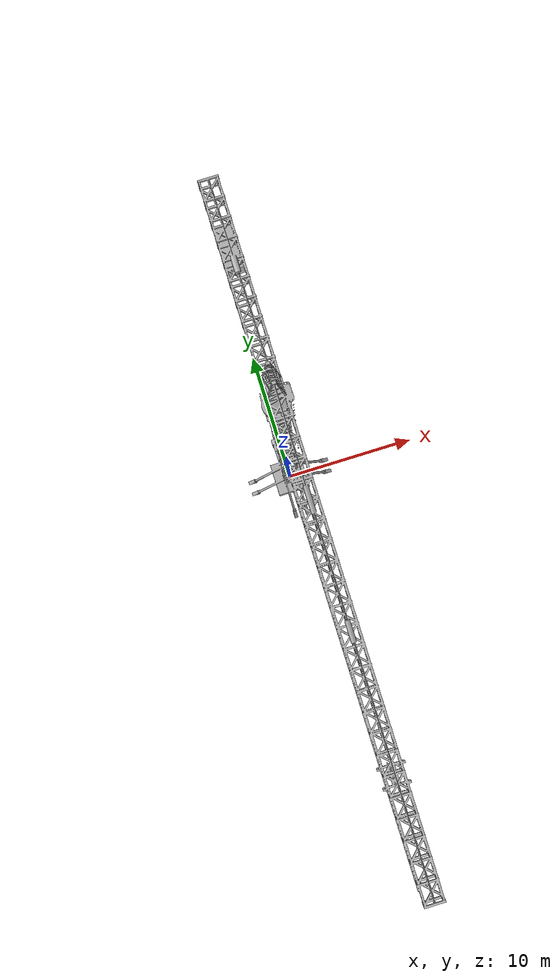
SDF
<?xml version="1.0" ?>
<sdf version="1.6">
  <model name="tower_crane">
    <static>true</static>
    <link name="link">
      <collision name="collision">
        <geometry>
          <mesh>
            <uri>model://tower_crane/meshes/tower_crane.dae</uri>
          </mesh>
        </geometry>
      </collision>
      <visual name="visual">
        <geometry>
          <mesh>
            <uri>model://tower_crane/meshes/tower_crane.dae</uri>
          </mesh>
        </geometry>
      </visual>
    </link>
  </model>
</sdf>
